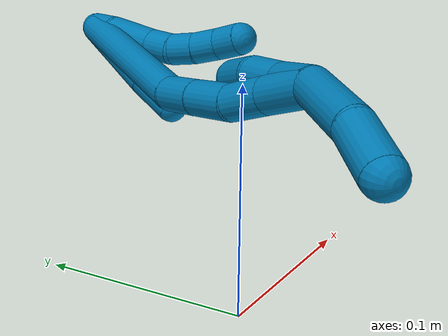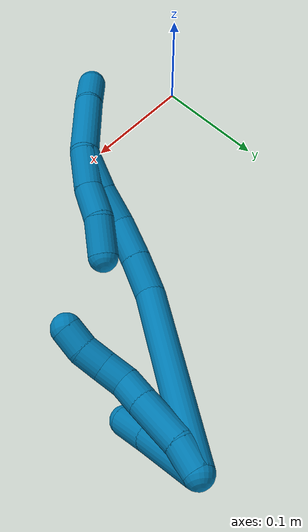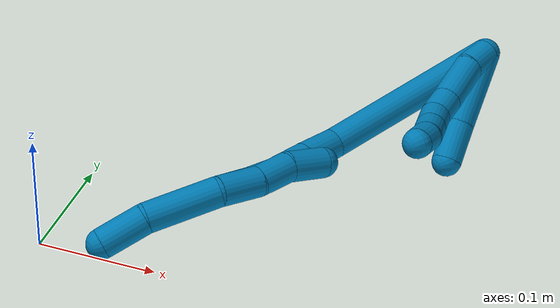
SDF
<sdf version="1.7">
 <world name="default">
  <model name="9">
   <static>0</static>
   <link name="9">
    <collision name="collision-cylinder-e_1_2_8">
     <pose>0.003551 -0.002129 -0.011882 2.96428 0.286116 2.03576</pose>
     <geometry><cylinder><radius>0.0125</radius><length>0.025165</length></cylinder></geometry>
     <surface>
      <friction><ode><mu>1.16</mu><mu2>1.16</mu2><slip1>0</slip1><slip2>0</slip2></ode></friction>
      <contact><ode><kp>1e+06</kp><kd>1</kd><max_vel>0</max_vel><min_depth>0.001</min_depth></ode></contact>
     </surface>
    </collision>
    <visual name="visual-cylinder-e_1_2_8">
     <pose>0.003551 -0.002129 -0.011882 2.96428 0.286116 2.03576</pose>
     <geometry><cylinder><radius>0.0125</radius><length>0.025165</length></cylinder></geometry>
     <material><ambient>0 0.490196 0.709804 1</ambient></material>
    </visual>
    <collision name="collision-cylinder-e_2_8_9">
     <pose>0.017306 -0.006074 -0.042457 3.0448 0.497659 2.76487</pose>
     <geometry><cylinder><radius>0.0125</radius><length>0.042749</length></cylinder></geometry>
     <surface>
      <friction><ode><mu>1.16</mu><mu2>1.16</mu2><slip1>0</slip1><slip2>0</slip2></ode></friction>
      <contact><ode><kp>1e+06</kp><kd>1</kd><max_vel>0</max_vel><min_depth>0.001</min_depth></ode></contact>
     </surface>
    </collision>
    <visual name="visual-cylinder-e_2_8_9">
     <pose>0.017306 -0.006074 -0.042457 3.0448 0.497659 2.76487</pose>
     <geometry><cylinder><radius>0.0125</radius><length>0.042749</length></cylinder></geometry>
     <material><ambient>0 0.490196 0.709804 1</ambient></material>
    </visual>
    <collision name="collision-cylinder-e_3_9_10">
     <pose>0.032277 -0.009547 -0.0706 2.96788 0.461257 2.43137</pose>
     <geometry><cylinder><radius>0.0125</radius><length>0.021427</length></cylinder></geometry>
     <surface>
      <friction><ode><mu>1.16</mu><mu2>1.16</mu2><slip1>0</slip1><slip2>0</slip2></ode></friction>
      <contact><ode><kp>1e+06</kp><kd>1</kd><max_vel>0</max_vel><min_depth>0.001</min_depth></ode></contact>
     </surface>
    </collision>
    <visual name="visual-cylinder-e_3_9_10">
     <pose>0.032277 -0.009547 -0.0706 2.96788 0.461257 2.43137</pose>
     <geometry><cylinder><radius>0.0125</radius><length>0.021427</length></cylinder></geometry>
     <material><ambient>0 0.490196 0.709804 1</ambient></material>
    </visual>
    <collision name="collision-cylinder-e_4_10_11">
     <pose>0.042724 -0.015324 -0.087177 2.61757 0.603869 1.71986</pose>
     <geometry><cylinder><radius>0.0125</radius><length>0.020002</length></cylinder></geometry>
     <surface>
      <friction><ode><mu>1.16</mu><mu2>1.16</mu2><slip1>0</slip1><slip2>0</slip2></ode></friction>
      <contact><ode><kp>1e+06</kp><kd>1</kd><max_vel>0</max_vel><min_depth>0.001</min_depth></ode></contact>
     </surface>
    </collision>
    <visual name="visual-cylinder-e_4_10_11">
     <pose>0.042724 -0.015324 -0.087177 2.61757 0.603869 1.71986</pose>
     <geometry><cylinder><radius>0.0125</radius><length>0.020002</length></cylinder></geometry>
     <material><ambient>0 0.490196 0.709804 1</ambient></material>
    </visual>
    <collision name="collision-cylinder-e_5_11_12">
     <pose>0.053827 -0.024777 -0.101215 2.4843 0.555972 1.39362</pose>
     <geometry><cylinder><radius>0.0125</radius><length>0.020554</length></cylinder></geometry>
     <surface>
      <friction><ode><mu>1.16</mu><mu2>1.16</mu2><slip1>0</slip1><slip2>0</slip2></ode></friction>
      <contact><ode><kp>1e+06</kp><kd>1</kd><max_vel>0</max_vel><min_depth>0.001</min_depth></ode></contact>
     </surface>
    </collision>
    <visual name="visual-cylinder-e_5_11_12">
     <pose>0.053827 -0.024777 -0.101215 2.4843 0.555972 1.39362</pose>
     <geometry><cylinder><radius>0.0125</radius><length>0.020554</length></cylinder></geometry>
     <material><ambient>0 0.490196 0.709804 1</ambient></material>
    </visual>
    <collision name="collision-cylinder-e_6_12_6">
     <pose>0.062578 -0.035129 -0.116175 2.58404 0.337345 1.07338</pose>
     <geometry><cylinder><radius>0.0125</radius><length>0.020104</length></cylinder></geometry>
     <surface>
      <friction><ode><mu>1.16</mu><mu2>1.16</mu2><slip1>0</slip1><slip2>0</slip2></ode></friction>
      <contact><ode><kp>1e+06</kp><kd>1</kd><max_vel>0</max_vel><min_depth>0.001</min_depth></ode></contact>
     </surface>
    </collision>
    <visual name="visual-cylinder-e_6_12_6">
     <pose>0.062578 -0.035129 -0.116175 2.58404 0.337345 1.07338</pose>
     <geometry><cylinder><radius>0.0125</radius><length>0.020104</length></cylinder></geometry>
     <material><ambient>0 0.490196 0.709804 1</ambient></material>
    </visual>
    <collision name="collision-cylinder-e_1_2_13">
     <pose>0.018947 0.012044 -0.023769 -2.67257 0.618116 -1.85683</pose>
     <geometry><cylinder><radius>0.0125</radius><length>0.065391</length></cylinder></geometry>
     <surface>
      <friction><ode><mu>1.16</mu><mu2>1.16</mu2><slip1>0</slip1><slip2>0</slip2></ode></friction>
      <contact><ode><kp>1e+06</kp><kd>1</kd><max_vel>0</max_vel><min_depth>0.001</min_depth></ode></contact>
     </surface>
    </collision>
    <visual name="visual-cylinder-e_1_2_13">
     <pose>0.018947 0.012044 -0.023769 -2.67257 0.618116 -1.85683</pose>
     <geometry><cylinder><radius>0.0125</radius><length>0.065391</length></cylinder></geometry>
     <material><ambient>0 0.490196 0.709804 1</ambient></material>
    </visual>
    <collision name="collision-cylinder-e_2_13_5">
     <pose>0.048425 0.02938 -0.060208 -2.74602 0.654274 -2.07464</pose>
     <geometry><cylinder><radius>0.0125</radius><length>0.034609</length></cylinder></geometry>
     <surface>
      <friction><ode><mu>1.16</mu><mu2>1.16</mu2><slip1>0</slip1><slip2>0</slip2></ode></friction>
      <contact><ode><kp>1e+06</kp><kd>1</kd><max_vel>0</max_vel><min_depth>0.001</min_depth></ode></contact>
     </surface>
    </collision>
    <visual name="visual-cylinder-e_2_13_5">
     <pose>0.048425 0.02938 -0.060208 -2.74602 0.654274 -2.07464</pose>
     <geometry><cylinder><radius>0.0125</radius><length>0.034609</length></cylinder></geometry>
     <material><ambient>0 0.490196 0.709804 1</ambient></material>
    </visual>
    <collision name="collision-cylinder-e_1_2_14">
     <pose>0.005322 0.005681 -0.079638 -3.07037 0.066556 -1.50305</pose>
     <geometry><cylinder><radius>0.0125</radius><length>0.160035</length></cylinder></geometry>
     <surface>
      <friction><ode><mu>1.16</mu><mu2>1.16</mu2><slip1>0</slip1><slip2>0</slip2></ode></friction>
      <contact><ode><kp>1e+06</kp><kd>1</kd><max_vel>0</max_vel><min_depth>0.001</min_depth></ode></contact>
     </surface>
    </collision>
    <visual name="visual-cylinder-e_1_2_14">
     <pose>0.005322 0.005681 -0.079638 -3.07037 0.066556 -1.50305</pose>
     <geometry><cylinder><radius>0.0125</radius><length>0.160035</length></cylinder></geometry>
     <material><ambient>0 0.490196 0.709804 1</ambient></material>
    </visual>
    <collision name="collision-cylinder-e_2_14_15">
     <pose>0.012522 0.007569 -0.175705 2.91465 0.11098 0.907061</pose>
     <geometry><cylinder><radius>0.0125</radius><length>0.033932</length></cylinder></geometry>
     <surface>
      <friction><ode><mu>1.16</mu><mu2>1.16</mu2><slip1>0</slip1><slip2>0</slip2></ode></friction>
      <contact><ode><kp>1e+06</kp><kd>1</kd><max_vel>0</max_vel><min_depth>0.001</min_depth></ode></contact>
     </surface>
    </collision>
    <visual name="visual-cylinder-e_2_14_15">
     <pose>0.012522 0.007569 -0.175705 2.91465 0.11098 0.907061</pose>
     <geometry><cylinder><radius>0.0125</radius><length>0.033932</length></cylinder></geometry>
     <material><ambient>0 0.490196 0.709804 1</ambient></material>
    </visual>
    <collision name="collision-cylinder-e_3_15_16">
     <pose>0.017094 -0.000538 -0.209322 2.89571 0.150805 1.09751</pose>
     <geometry><cylinder><radius>0.0125</radius><length>0.035847</length></cylinder></geometry>
     <surface>
      <friction><ode><mu>1.16</mu><mu2>1.16</mu2><slip1>0</slip1><slip2>0</slip2></ode></friction>
      <contact><ode><kp>1e+06</kp><kd>1</kd><max_vel>0</max_vel><min_depth>0.001</min_depth></ode></contact>
     </surface>
    </collision>
    <visual name="visual-cylinder-e_3_15_16">
     <pose>0.017094 -0.000538 -0.209322 2.89571 0.150805 1.09751</pose>
     <geometry><cylinder><radius>0.0125</radius><length>0.035847</length></cylinder></geometry>
     <material><ambient>0 0.490196 0.709804 1</ambient></material>
    </visual>
    <collision name="collision-cylinder-e_4_16_17">
     <pose>0.022477 -0.012414 -0.240141 2.63511 0.170887 0.639231</pose>
     <geometry><cylinder><radius>0.0125</radius><length>0.03164</length></cylinder></geometry>
     <surface>
      <friction><ode><mu>1.16</mu><mu2>1.16</mu2><slip1>0</slip1><slip2>0</slip2></ode></friction>
      <contact><ode><kp>1e+06</kp><kd>1</kd><max_vel>0</max_vel><min_depth>0.001</min_depth></ode></contact>
     </surface>
    </collision>
    <visual name="visual-cylinder-e_4_16_17">
     <pose>0.022477 -0.012414 -0.240141 2.63511 0.170887 0.639231</pose>
     <geometry><cylinder><radius>0.0125</radius><length>0.03164</length></cylinder></geometry>
     <material><ambient>0 0.490196 0.709804 1</ambient></material>
    </visual>
    <collision name="collision-cylinder-e_5_17_1">
     <pose>0.026714 -0.028328 -0.271074 2.69182 0.080358 0.347915</pose>
     <geometry><cylinder><radius>0.0125</radius><length>0.038546</length></cylinder></geometry>
     <surface>
      <friction><ode><mu>1.16</mu><mu2>1.16</mu2><slip1>0</slip1><slip2>0</slip2></ode></friction>
      <contact><ode><kp>1e+06</kp><kd>1</kd><max_vel>0</max_vel><min_depth>0.001</min_depth></ode></contact>
     </surface>
    </collision>
    <visual name="visual-cylinder-e_5_17_1">
     <pose>0.026714 -0.028328 -0.271074 2.69182 0.080358 0.347915</pose>
     <geometry><cylinder><radius>0.0125</radius><length>0.038546</length></cylinder></geometry>
     <material><ambient>0 0.490196 0.709804 1</ambient></material>
    </visual>
    <collision name="collision-cylinder-e_1_1_18">
     <pose>0.023572 -0.032892 -0.31832 -3.01574 -0.154112 1.77267</pose>
     <geometry><cylinder><radius>0.0125</radius><length>0.061094</length></cylinder></geometry>
     <surface>
      <friction><ode><mu>1.16</mu><mu2>1.16</mu2><slip1>0</slip1><slip2>0</slip2></ode></friction>
      <contact><ode><kp>1e+06</kp><kd>1</kd><max_vel>0</max_vel><min_depth>0.001</min_depth></ode></contact>
     </surface>
    </collision>
    <visual name="visual-cylinder-e_1_1_18">
     <pose>0.023572 -0.032892 -0.31832 -3.01574 -0.154112 1.77267</pose>
     <geometry><cylinder><radius>0.0125</radius><length>0.061094</length></cylinder></geometry>
     <material><ambient>0 0.490196 0.709804 1</ambient></material>
    </visual>
    <collision name="collision-cylinder-e_2_18_4">
     <pose>0.017681 -0.022548 -0.366542 -2.79718 -0.061837 0.351965</pose>
     <geometry><cylinder><radius>0.0125</radius><length>0.038906</length></cylinder></geometry>
     <surface>
      <friction><ode><mu>1.16</mu><mu2>1.16</mu2><slip1>0</slip1><slip2>0</slip2></ode></friction>
      <contact><ode><kp>1e+06</kp><kd>1</kd><max_vel>0</max_vel><min_depth>0.001</min_depth></ode></contact>
     </surface>
    </collision>
    <visual name="visual-cylinder-e_2_18_4">
     <pose>0.017681 -0.022548 -0.366542 -2.79718 -0.061837 0.351965</pose>
     <geometry><cylinder><radius>0.0125</radius><length>0.038906</length></cylinder></geometry>
     <material><ambient>0 0.490196 0.709804 1</ambient></material>
    </visual>
    <collision name="collision-cylinder-e_1_1_19">
     <pose>0.030188 -0.033654 -0.270533 -0.168022 0.106051 -0.008939</pose>
     <geometry><cylinder><radius>0.0125</radius><length>0.036396</length></cylinder></geometry>
     <surface>
      <friction><ode><mu>1.16</mu><mu2>1.16</mu2><slip1>0</slip1><slip2>0</slip2></ode></friction>
      <contact><ode><kp>1e+06</kp><kd>1</kd><max_vel>0</max_vel><min_depth>0.001</min_depth></ode></contact>
     </surface>
    </collision>
    <visual name="visual-cylinder-e_1_1_19">
     <pose>0.030188 -0.033654 -0.270533 -0.168022 0.106051 -0.008939</pose>
     <geometry><cylinder><radius>0.0125</radius><length>0.036396</length></cylinder></geometry>
     <material><ambient>0 0.490196 0.709804 1</ambient></material>
    </visual>
    <collision name="collision-cylinder-e_2_19_20">
     <pose>0.030883 -0.028443 -0.237701 -0.14474 -0.081099 0.005883</pose>
     <geometry><cylinder><radius>0.0125</radius><length>0.030399</length></cylinder></geometry>
     <surface>
      <friction><ode><mu>1.16</mu><mu2>1.16</mu2><slip1>0</slip1><slip2>0</slip2></ode></friction>
      <contact><ode><kp>1e+06</kp><kd>1</kd><max_vel>0</max_vel><min_depth>0.001</min_depth></ode></contact>
     </surface>
    </collision>
    <visual name="visual-cylinder-e_2_19_20">
     <pose>0.030883 -0.028443 -0.237701 -0.14474 -0.081099 0.005883</pose>
     <geometry><cylinder><radius>0.0125</radius><length>0.030399</length></cylinder></geometry>
     <material><ambient>0 0.490196 0.709804 1</ambient></material>
    </visual>
    <collision name="collision-cylinder-e_3_20_3">
     <pose>0.032309 -0.021687 -0.206972 -0.282664 0.160742 -0.022919</pose>
     <geometry><cylinder><radius>0.0125</radius><length>0.033205</length></cylinder></geometry>
     <surface>
      <friction><ode><mu>1.16</mu><mu2>1.16</mu2><slip1>0</slip1><slip2>0</slip2></ode></friction>
      <contact><ode><kp>1e+06</kp><kd>1</kd><max_vel>0</max_vel><min_depth>0.001</min_depth></ode></contact>
     </surface>
    </collision>
    <visual name="visual-cylinder-e_3_20_3">
     <pose>0.032309 -0.021687 -0.206972 -0.282664 0.160742 -0.022919</pose>
     <geometry><cylinder><radius>0.0125</radius><length>0.033205</length></cylinder></geometry>
     <material><ambient>0 0.490196 0.709804 1</ambient></material>
    </visual>
    <collision name="collision-sphere-3">
     <pose>0.034966 -0.017116 -0.191234 0 -0 0</pose>
     <geometry><sphere><radius>0.0125</radius></sphere></geometry>
     <surface>
      <friction><ode><mu>1.16</mu><mu2>1.16</mu2><slip1>0</slip1><slip2>0</slip2></ode></friction>
      <contact><ode><kp>1e+06</kp><kd>1</kd><max_vel>0</max_vel><min_depth>0.001</min_depth></ode></contact>
     </surface>
    </collision>
    <visual name="visual-sphere-3">
     <pose>0.034966 -0.017116 -0.191234 0 -0 0</pose>
     <geometry><sphere><radius>0.0125</radius></sphere></geometry>
     <material><ambient>0 0.490196 0.709804 1</ambient></material>
    </visual>
    <collision name="collision-sphere-20">
     <pose>0.029652 -0.026258 -0.22271 0 -0 0</pose>
     <geometry><sphere><radius>0.0125</radius></sphere></geometry>
     <surface>
      <friction><ode><mu>1.16</mu><mu2>1.16</mu2><slip1>0</slip1><slip2>0</slip2></ode></friction>
      <contact><ode><kp>1e+06</kp><kd>1</kd><max_vel>0</max_vel><min_depth>0.001</min_depth></ode></contact>
     </surface>
    </collision>
    <visual name="visual-sphere-20">
     <pose>0.029652 -0.026258 -0.22271 0 -0 0</pose>
     <geometry><sphere><radius>0.0125</radius></sphere></geometry>
     <material><ambient>0 0.490196 0.709804 1</ambient></material>
    </visual>
    <collision name="collision-sphere-19">
     <pose>0.032114 -0.030628 -0.252692 0 -0 0</pose>
     <geometry><sphere><radius>0.0125</radius></sphere></geometry>
     <surface>
      <friction><ode><mu>1.16</mu><mu2>1.16</mu2><slip1>0</slip1><slip2>0</slip2></ode></friction>
      <contact><ode><kp>1e+06</kp><kd>1</kd><max_vel>0</max_vel><min_depth>0.001</min_depth></ode></contact>
     </surface>
    </collision>
    <visual name="visual-sphere-19">
     <pose>0.032114 -0.030628 -0.252692 0 -0 0</pose>
     <geometry><sphere><radius>0.0125</radius></sphere></geometry>
     <material><ambient>0 0.490196 0.709804 1</ambient></material>
    </visual>
    <collision name="collision-sphere-12">
     <pose>0.059251 -0.03011 -0.108126 0 -0 0</pose>
     <geometry><sphere><radius>0.0125</radius></sphere></geometry>
     <surface>
      <friction><ode><mu>1.16</mu><mu2>1.16</mu2><slip1>0</slip1><slip2>0</slip2></ode></friction>
      <contact><ode><kp>1e+06</kp><kd>1</kd><max_vel>0</max_vel><min_depth>0.001</min_depth></ode></contact>
     </surface>
    </collision>
    <visual name="visual-sphere-12">
     <pose>0.059251 -0.03011 -0.108126 0 -0 0</pose>
     <geometry><sphere><radius>0.0125</radius></sphere></geometry>
     <material><ambient>0 0.490196 0.709804 1</ambient></material>
    </visual>
    <collision name="collision-sphere-11">
     <pose>0.048403 -0.019443 -0.094305 0 -0 0</pose>
     <geometry><sphere><radius>0.0125</radius></sphere></geometry>
     <surface>
      <friction><ode><mu>1.16</mu><mu2>1.16</mu2><slip1>0</slip1><slip2>0</slip2></ode></friction>
      <contact><ode><kp>1e+06</kp><kd>1</kd><max_vel>0</max_vel><min_depth>0.001</min_depth></ode></contact>
     </surface>
    </collision>
    <visual name="visual-sphere-11">
     <pose>0.048403 -0.019443 -0.094305 0 -0 0</pose>
     <geometry><sphere><radius>0.0125</radius></sphere></geometry>
     <material><ambient>0 0.490196 0.709804 1</ambient></material>
    </visual>
    <collision name="collision-sphere-10">
     <pose>0.037046 -0.011205 -0.08005 0 -0 0</pose>
     <geometry><sphere><radius>0.0125</radius></sphere></geometry>
     <surface>
      <friction><ode><mu>1.16</mu><mu2>1.16</mu2><slip1>0</slip1><slip2>0</slip2></ode></friction>
      <contact><ode><kp>1e+06</kp><kd>1</kd><max_vel>0</max_vel><min_depth>0.001</min_depth></ode></contact>
     </surface>
    </collision>
    <visual name="visual-sphere-10">
     <pose>0.037046 -0.011205 -0.08005 0 -0 0</pose>
     <geometry><sphere><radius>0.0125</radius></sphere></geometry>
     <material><ambient>0 0.490196 0.709804 1</ambient></material>
    </visual>
    <collision name="collision-sphere-9">
     <pose>0.027509 -0.007889 -0.061151 0 -0 0</pose>
     <geometry><sphere><radius>0.0125</radius></sphere></geometry>
     <surface>
      <friction><ode><mu>1.16</mu><mu2>1.16</mu2><slip1>0</slip1><slip2>0</slip2></ode></friction>
      <contact><ode><kp>1e+06</kp><kd>1</kd><max_vel>0</max_vel><min_depth>0.001</min_depth></ode></contact>
     </surface>
    </collision>
    <visual name="visual-sphere-9">
     <pose>0.027509 -0.007889 -0.061151 0 -0 0</pose>
     <geometry><sphere><radius>0.0125</radius></sphere></geometry>
     <material><ambient>0 0.490196 0.709804 1</ambient></material>
    </visual>
    <collision name="collision-sphere-2">
     <geometry><sphere><radius>0.0125</radius></sphere></geometry>
     <surface>
      <friction><ode><mu>1.16</mu><mu2>1.16</mu2><slip1>0</slip1><slip2>0</slip2></ode></friction>
      <contact><ode><kp>1e+06</kp><kd>1</kd><max_vel>0</max_vel><min_depth>0.001</min_depth></ode></contact>
     </surface>
    </collision>
    <visual name="visual-sphere-2">
     <geometry><sphere><radius>0.0125</radius></sphere></geometry>
     <material><ambient>0 0.490196 0.709804 1</ambient></material>
    </visual>
    <collision name="collision-sphere-8">
     <pose>0.007102 -0.004258 -0.023764 0 -0 0</pose>
     <geometry><sphere><radius>0.0125</radius></sphere></geometry>
     <surface>
      <friction><ode><mu>1.16</mu><mu2>1.16</mu2><slip1>0</slip1><slip2>0</slip2></ode></friction>
      <contact><ode><kp>1e+06</kp><kd>1</kd><max_vel>0</max_vel><min_depth>0.001</min_depth></ode></contact>
     </surface>
    </collision>
    <visual name="visual-sphere-8">
     <pose>0.007102 -0.004258 -0.023764 0 -0 0</pose>
     <geometry><sphere><radius>0.0125</radius></sphere></geometry>
     <material><ambient>0 0.490196 0.709804 1</ambient></material>
    </visual>
    <collision name="collision-sphere-6">
     <pose>0.065905 -0.040147 -0.124223 0 -0 0</pose>
     <geometry><sphere><radius>0.0125</radius></sphere></geometry>
     <surface>
      <friction><ode><mu>1.16</mu><mu2>1.16</mu2><slip1>0</slip1><slip2>0</slip2></ode></friction>
      <contact><ode><kp>1e+06</kp><kd>1</kd><max_vel>0</max_vel><min_depth>0.001</min_depth></ode></contact>
     </surface>
    </collision>
    <visual name="visual-sphere-6">
     <pose>0.065905 -0.040147 -0.124223 0 -0 0</pose>
     <geometry><sphere><radius>0.0125</radius></sphere></geometry>
     <material><ambient>0 0.490196 0.709804 1</ambient></material>
    </visual>
    <collision name="collision-sphere-13">
     <pose>0.037894 0.024089 -0.047537 0 -0 0</pose>
     <geometry><sphere><radius>0.0125</radius></sphere></geometry>
     <surface>
      <friction><ode><mu>1.16</mu><mu2>1.16</mu2><slip1>0</slip1><slip2>0</slip2></ode></friction>
      <contact><ode><kp>1e+06</kp><kd>1</kd><max_vel>0</max_vel><min_depth>0.001</min_depth></ode></contact>
     </surface>
    </collision>
    <visual name="visual-sphere-13">
     <pose>0.037894 0.024089 -0.047537 0 -0 0</pose>
     <geometry><sphere><radius>0.0125</radius></sphere></geometry>
     <material><ambient>0 0.490196 0.709804 1</ambient></material>
    </visual>
    <collision name="collision-sphere-5">
     <pose>0.058957 0.034671 -0.072878 0 -0 0</pose>
     <geometry><sphere><radius>0.0125</radius></sphere></geometry>
     <surface>
      <friction><ode><mu>1.16</mu><mu2>1.16</mu2><slip1>0</slip1><slip2>0</slip2></ode></friction>
      <contact><ode><kp>1e+06</kp><kd>1</kd><max_vel>0</max_vel><min_depth>0.001</min_depth></ode></contact>
     </surface>
    </collision>
    <visual name="visual-sphere-5">
     <pose>0.058957 0.034671 -0.072878 0 -0 0</pose>
     <geometry><sphere><radius>0.0125</radius></sphere></geometry>
     <material><ambient>0 0.490196 0.709804 1</ambient></material>
    </visual>
    <collision name="collision-sphere-14">
     <pose>0.010643 0.011363 -0.159276 0 -0 0</pose>
     <geometry><sphere><radius>0.0125</radius></sphere></geometry>
     <surface>
      <friction><ode><mu>1.16</mu><mu2>1.16</mu2><slip1>0</slip1><slip2>0</slip2></ode></friction>
      <contact><ode><kp>1e+06</kp><kd>1</kd><max_vel>0</max_vel><min_depth>0.001</min_depth></ode></contact>
     </surface>
    </collision>
    <visual name="visual-sphere-14">
     <pose>0.010643 0.011363 -0.159276 0 -0 0</pose>
     <geometry><sphere><radius>0.0125</radius></sphere></geometry>
     <material><ambient>0 0.490196 0.709804 1</ambient></material>
    </visual>
    <collision name="collision-sphere-15">
     <pose>0.014401 0.003775 -0.192135 0 -0 0</pose>
     <geometry><sphere><radius>0.0125</radius></sphere></geometry>
     <surface>
      <friction><ode><mu>1.16</mu><mu2>1.16</mu2><slip1>0</slip1><slip2>0</slip2></ode></friction>
      <contact><ode><kp>1e+06</kp><kd>1</kd><max_vel>0</max_vel><min_depth>0.001</min_depth></ode></contact>
     </surface>
    </collision>
    <visual name="visual-sphere-15">
     <pose>0.014401 0.003775 -0.192135 0 -0 0</pose>
     <geometry><sphere><radius>0.0125</radius></sphere></geometry>
     <material><ambient>0 0.490196 0.709804 1</ambient></material>
    </visual>
    <collision name="collision-sphere-16">
     <pose>0.019787 -0.004851 -0.226509 0 -0 0</pose>
     <geometry><sphere><radius>0.0125</radius></sphere></geometry>
     <surface>
      <friction><ode><mu>1.16</mu><mu2>1.16</mu2><slip1>0</slip1><slip2>0</slip2></ode></friction>
      <contact><ode><kp>1e+06</kp><kd>1</kd><max_vel>0</max_vel><min_depth>0.001</min_depth></ode></contact>
     </surface>
    </collision>
    <visual name="visual-sphere-16">
     <pose>0.019787 -0.004851 -0.226509 0 -0 0</pose>
     <geometry><sphere><radius>0.0125</radius></sphere></geometry>
     <material><ambient>0 0.490196 0.709804 1</ambient></material>
    </visual>
    <collision name="collision-sphere-17">
     <pose>0.025167 -0.019976 -0.253773 0 -0 0</pose>
     <geometry><sphere><radius>0.0125</radius></sphere></geometry>
     <surface>
      <friction><ode><mu>1.16</mu><mu2>1.16</mu2><slip1>0</slip1><slip2>0</slip2></ode></friction>
      <contact><ode><kp>1e+06</kp><kd>1</kd><max_vel>0</max_vel><min_depth>0.001</min_depth></ode></contact>
     </surface>
    </collision>
    <visual name="visual-sphere-17">
     <pose>0.025167 -0.019976 -0.253773 0 -0 0</pose>
     <geometry><sphere><radius>0.0125</radius></sphere></geometry>
     <material><ambient>0 0.490196 0.709804 1</ambient></material>
    </visual>
    <collision name="collision-sphere-1">
     <pose>0.028262 -0.036681 -0.288374 0 -0 0</pose>
     <geometry><sphere><radius>0.0125</radius></sphere></geometry>
     <surface>
      <friction><ode><mu>1.16</mu><mu2>1.16</mu2><slip1>0</slip1><slip2>0</slip2></ode></friction>
      <contact><ode><kp>1e+06</kp><kd>1</kd><max_vel>0</max_vel><min_depth>0.001</min_depth></ode></contact>
     </surface>
    </collision>
    <visual name="visual-sphere-1">
     <pose>0.028262 -0.036681 -0.288374 0 -0 0</pose>
     <geometry><sphere><radius>0.0125</radius></sphere></geometry>
     <material><ambient>0 0.490196 0.709804 1</ambient></material>
    </visual>
    <collision name="collision-sphere-18">
     <pose>0.018883 -0.029103 -0.348266 0 -0 0</pose>
     <geometry><sphere><radius>0.0125</radius></sphere></geometry>
     <surface>
      <friction><ode><mu>1.16</mu><mu2>1.16</mu2><slip1>0</slip1><slip2>0</slip2></ode></friction>
      <contact><ode><kp>1e+06</kp><kd>1</kd><max_vel>0</max_vel><min_depth>0.001</min_depth></ode></contact>
     </surface>
    </collision>
    <visual name="visual-sphere-18">
     <pose>0.018883 -0.029103 -0.348266 0 -0 0</pose>
     <geometry><sphere><radius>0.0125</radius></sphere></geometry>
     <material><ambient>0 0.490196 0.709804 1</ambient></material>
    </visual>
    <collision name="collision-sphere-4">
     <pose>0.016479 -0.015992 -0.384818 0 -0 0</pose>
     <geometry><sphere><radius>0.0125</radius></sphere></geometry>
     <surface>
      <friction><ode><mu>1.16</mu><mu2>1.16</mu2><slip1>0</slip1><slip2>0</slip2></ode></friction>
      <contact><ode><kp>1e+06</kp><kd>1</kd><max_vel>0</max_vel><min_depth>0.001</min_depth></ode></contact>
     </surface>
    </collision>
    <visual name="visual-sphere-4">
     <pose>0.016479 -0.015992 -0.384818 0 -0 0</pose>
     <geometry><sphere><radius>0.0125</radius></sphere></geometry>
     <material><ambient>0 0.490196 0.709804 1</ambient></material>
    </visual>
    <inertial>
     <pose>0.022031 -0.00836 -0.153779 0 -0 0</pose>
     <mass>0.75</mass>
     <inertia>
      <ixx>-0.000277</ixx>
      <ixy>0</ixy>
      <ixz>0</ixz>
      <iyy>-0.000321</iyy>
      <iyz>0</iyz>
      <izz>-0.000119</izz>
     </inertia>
    </inertial>
   </link>
   <pose>0.281266 0.287539 0.07189 -1.48041 0.374969 -0.593484</pose>
  </model>
 </world>
</sdf>
